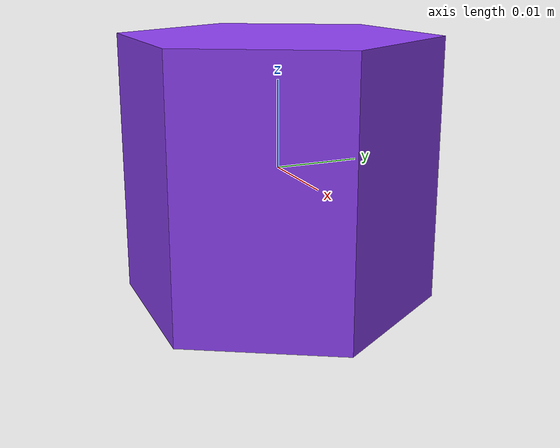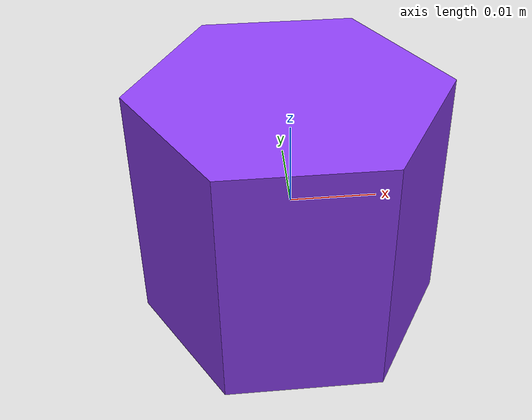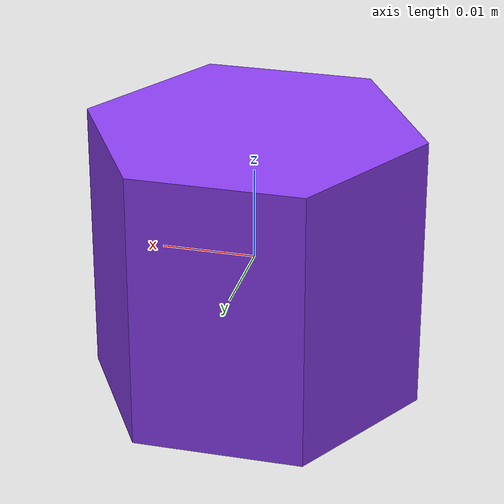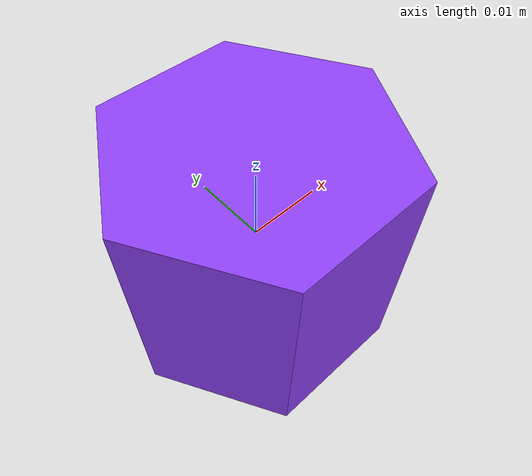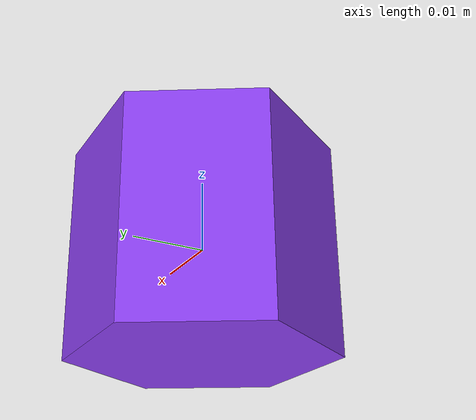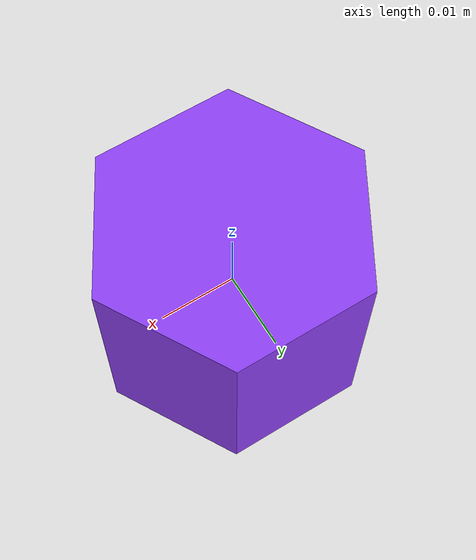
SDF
<?xml version="1.0"?>
<sdf version="1.9">
  <model name="m8_hex_prism">
    <static>false</static>
    <link name="body">
      <inertial><mass>0.024</mass><inertia><ixx>0.000003</ixx><iyy>0.000003</iyy><izz>0.000003</izz></inertia></inertial>
      <visual name="visual"><geometry><mesh><uri>model://m8_hex_prism/meshes/hex_prism.obj</uri></mesh></geometry><material><ambient>0.55 0.25 0.95 1</ambient><diffuse>0.55 0.25 0.95 1</diffuse></material></visual>
      <collision name="collision"><geometry><box><size>0.036 0.031 0.030</size></box></geometry><surface><friction><ode><mu>1.5</mu><mu2>1.5</mu2></ode></friction><contact><ode><kp>1000000.0</kp><kd>10.0</kd></ode></contact></surface></collision>
    </link>
  </model>
</sdf>
